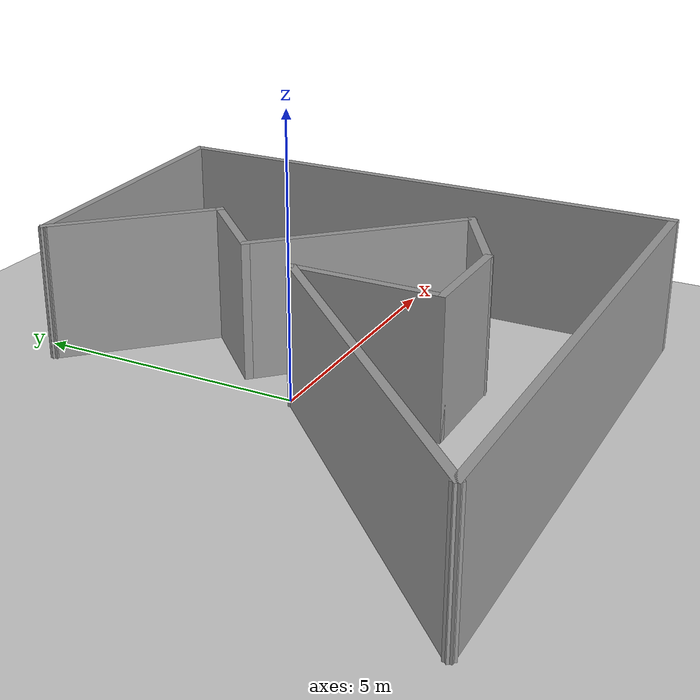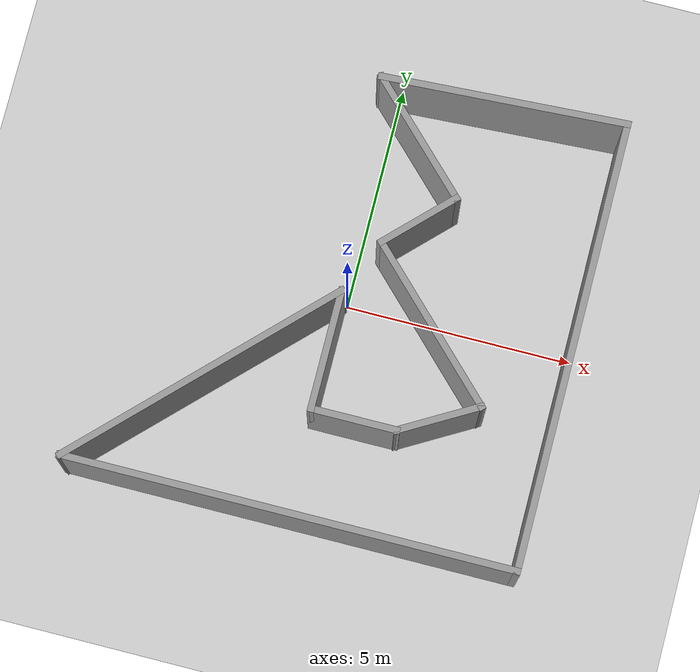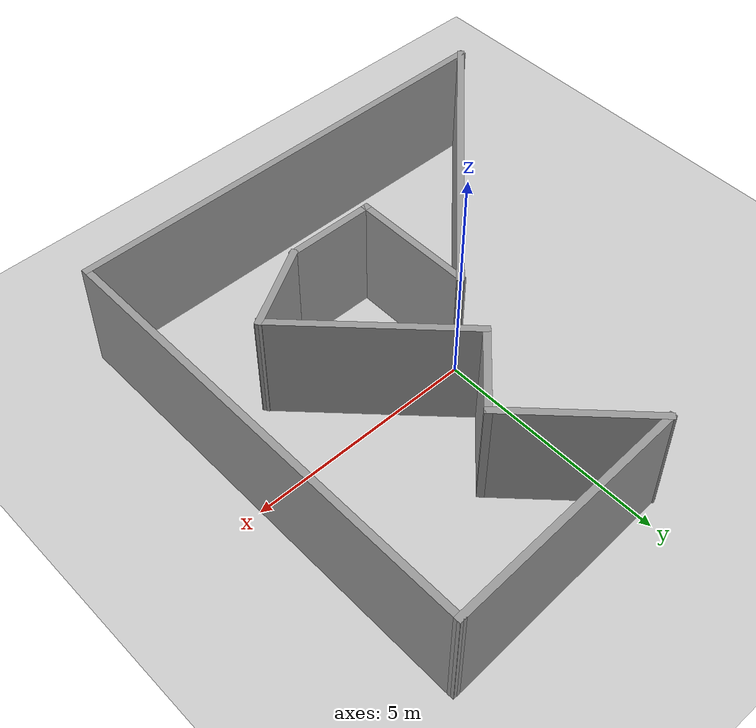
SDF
<sdf version="1.7">
 <world name="default">
  <light name="sun" type="directional">
   <pose>0 0 10 0 -0 0</pose>
   <diffuse>0.8 0.8 0.8 1</diffuse>
   <specular>0.2 0.2 0.2 1</specular>
   <attenuation>
    <range>1000</range>
    <constant>0.9</constant>
    <linear>0.01</linear>
    <quadratic>0.001</quadratic>
   </attenuation>
   <direction>-0.5 0.1 -0.9</direction>
   <spot><inner_angle>0</inner_angle><outer_angle>0</outer_angle><falloff>0</falloff></spot>
  </light>
  <model name="ground_plane">
   <static>1</static>
   <link name="link">
    <collision name="collision">
     <geometry><plane><normal>0 0 1</normal><size>100 100</size></plane></geometry>
     <surface><friction><ode><mu>100</mu><mu2>50</mu2></ode></friction></surface>
    </collision>
    <visual name="visual">
     <cast_shadows>0</cast_shadows>
     <geometry><plane><normal>0 0 1</normal><size>100 100</size></plane></geometry>
     <material>
      <script><uri>file://media/materials/scripts/gazebo.material</uri><name>Gazebo/Grey</name></script>
     </material>
    </visual>
   </link>
  </model>
  <gravity>0 0 -9.8</gravity>
  <magnetic_field>6e-06 2.3e-05 -4.2e-05</magnetic_field>
  <atmosphere type="adiabatic"/>
  <physics name="default_physics" default="0" type="ode">
   <max_step_size>0.001</max_step_size>
   <real_time_factor>1</real_time_factor>
   <real_time_update_rate>1000</real_time_update_rate>
  </physics>
  <scene><ambient>0.4 0.4 0.4 1</ambient><background>0.7 0.7 0.7 1</background><shadows>1</shadows></scene>
  <spherical_coordinates>
   <surface_model>EARTH_WGS84</surface_model>
   <latitude_deg>0</latitude_deg>
   <longitude_deg>0</longitude_deg>
   <elevation>0</elevation>
   <heading_deg>0</heading_deg>
  </spherical_coordinates>
  <model name="Untitled">
   <pose>-0.030345 -0.051012 0 0 -0 0</pose>
   <link name="Wall_1">
    <collision name="Wall_1_Collision">
     <geometry><box><size>10 0.15 2.5</size></box></geometry>
     <pose>0 0 1.25 0 -0 0</pose>
    </collision>
    <visual name="Wall_1_Visual">
     <pose>0 0 1.25 0 -0 0</pose>
     <geometry><box><size>10 0.15 2.5</size></box></geometry>
     <material>
      <script><uri>file://media/materials/scripts/gazebo.material</uri><name>Gazebo/Grey</name></script>
      <ambient>1 1 1 1</ambient>
     </material>
     <meta><layer>0</layer></meta>
    </visual>
    <pose>0.013607 -4.91139 0 0 -0 0</pose>
   </link>
   <link name="Wall_10">
    <collision name="Wall_10_Collision">
     <geometry><box><size>2 0.15 2.5</size></box></geometry>
     <pose>0 0 1.25 0 -0 0</pose>
    </collision>
    <visual name="Wall_10_Visual">
     <pose>0 0 1.25 0 -0 0</pose>
     <geometry><box><size>2 0.15 2.5</size></box></geometry>
     <material>
      <script><uri>file://media/materials/scripts/gazebo.material</uri><name>Gazebo/Grey</name></script>
      <ambient>1 1 1 1</ambient>
     </material>
     <meta><layer>0</layer></meta>
    </visual>
    <pose>1.13937 1.8105 0 0 -0 0.785398</pose>
   </link>
   <link name="Wall_11">
    <collision name="Wall_11_Collision">
     <geometry><box><size>3.25 0.15 2.5</size></box></geometry>
     <pose>0 0 1.25 0 -0 0</pose>
    </collision>
    <visual name="Wall_11_Visual">
     <pose>0 0 1.25 0 -0 0</pose>
     <geometry><box><size>3.25 0.15 2.5</size></box></geometry>
     <material>
      <script><uri>file://media/materials/scripts/gazebo.material</uri><name>Gazebo/Grey</name></script>
      <ambient>1 1 1 1</ambient>
     </material>
     <meta><layer>0</layer></meta>
    </visual>
    <pose>0.69743 3.56059 0 0 -0 2.35619</pose>
   </link>
   <link name="Wall_12">
    <collision name="Wall_12_Collision">
     <geometry><box><size>5.49464 0.15 2.5</size></box></geometry>
     <pose>0 0 1.25 0 -0 0</pose>
    </collision>
    <visual name="Wall_12_Visual">
     <pose>0 0 1.25 0 -0 0</pose>
     <geometry><box><size>5.49464 0.15 2.5</size></box></geometry>
     <material>
      <script><uri>file://media/materials/scripts/gazebo.material</uri><name>Gazebo/Grey</name></script>
      <ambient>1 1 1 1</ambient>
     </material>
     <meta><layer>0</layer></meta>
    </visual>
    <pose>2.27001 4.79761 0 0 -0 0.052788</pose>
   </link>
   <link name="Wall_2">
    <collision name="Wall_2_Collision">
     <geometry><box><size>10 0.15 2.5</size></box></geometry>
     <pose>0 0 1.25 0 -0 0</pose>
    </collision>
    <visual name="Wall_2_Visual">
     <pose>0 0 1.25 0 -0 0</pose>
     <geometry><box><size>10 0.15 2.5</size></box></geometry>
     <material>
      <script><uri>file://media/materials/scripts/gazebo.material</uri><name>Gazebo/Grey</name></script>
      <ambient>1 1 1 1</ambient>
     </material>
     <meta><layer>0</layer></meta>
    </visual>
    <pose>4.93861 0.013607 0 0 -0 1.5708</pose>
   </link>
   <link name="Wall_5">
    <collision name="Wall_5_Collision">
     <geometry><box><size>7 0.15 2.5</size></box></geometry>
     <pose>0 0 1.25 0 -0 0</pose>
    </collision>
    <visual name="Wall_5_Visual">
     <pose>0 0 1.25 0 -0 0</pose>
     <geometry><box><size>7 0.15 2.5</size></box></geometry>
     <material>
      <script><uri>file://media/materials/scripts/gazebo.material</uri><name>Gazebo/Grey</name></script>
      <ambient>1 1 1 1</ambient>
     </material>
     <meta><layer>0</layer></meta>
    </visual>
    <pose>-2.48955 -2.48955 0 0 -0 0.785398</pose>
   </link>
   <link name="Wall_6">
    <collision name="Wall_6_Collision">
     <geometry><box><size>2.75 0.15 2.5</size></box></geometry>
     <pose>0 0 1.25 0 -0 0</pose>
    </collision>
    <visual name="Wall_6_Visual">
     <pose>0 0 1.25 0 -0 0</pose>
     <geometry><box><size>2.75 0.15 2.5</size></box></geometry>
     <material>
      <script><uri>file://media/materials/scripts/gazebo.material</uri><name>Gazebo/Grey</name></script>
      <ambient>1 1 1 1</ambient>
     </material>
     <meta><layer>0</layer></meta>
    </visual>
    <pose>-0.067712 -1.36771 0 0 -0 -1.5708</pose>
   </link>
   <link name="Wall_7">
    <collision name="Wall_7_Collision">
     <geometry><box><size>2 0.15 2.5</size></box></geometry>
     <pose>0 0 1.25 0 -0 0</pose>
    </collision>
    <visual name="Wall_7_Visual">
     <pose>0 0 1.25 0 -0 0</pose>
     <geometry><box><size>2 0.15 2.5</size></box></geometry>
     <material>
      <script><uri>file://media/materials/scripts/gazebo.material</uri><name>Gazebo/Grey</name></script>
      <ambient>1 1 1 1</ambient>
     </material>
     <meta><layer>0</layer></meta>
    </visual>
    <pose>0.857288 -2.66771 0 0 -0 0</pose>
   </link>
   <link name="Wall_8">
    <collision name="Wall_8_Collision">
     <geometry><box><size>2 0.15 2.5</size></box></geometry>
     <pose>0 0 1.25 0 -0 0</pose>
    </collision>
    <visual name="Wall_8_Visual">
     <pose>0 0 1.25 0 -0 0</pose>
     <geometry><box><size>2 0.15 2.5</size></box></geometry>
     <material>
      <script><uri>file://media/materials/scripts/gazebo.material</uri><name>Gazebo/Grey</name></script>
      <ambient>1 1 1 1</ambient>
     </material>
     <meta><layer>0</layer></meta>
    </visual>
    <pose>2.58336 -2.20521 0 0 -0 0.523599</pose>
   </link>
   <link name="Wall_9">
    <collision name="Wall_9_Collision">
     <geometry><box><size>4.25 0.15 2.5</size></box></geometry>
     <pose>0 0 1.25 0 -0 0</pose>
    </collision>
    <visual name="Wall_9_Visual">
     <pose>0 0 1.25 0 -0 0</pose>
     <geometry><box><size>4.25 0.15 2.5</size></box></geometry>
     <material>
      <script><uri>file://media/materials/scripts/gazebo.material</uri><name>Gazebo/Grey</name></script>
      <ambient>1 1 1 1</ambient>
     </material>
     <meta><layer>0</layer></meta>
    </visual>
    <pose>1.93487 -0.293143 0 0 -0 2.35619</pose>
   </link>
   <static>1</static>
  </model>
 </world>
</sdf>
